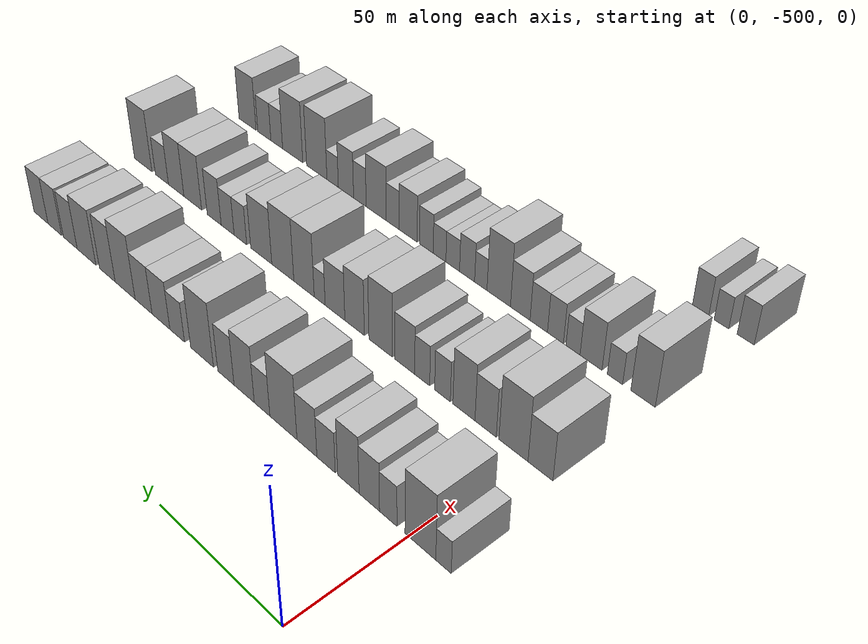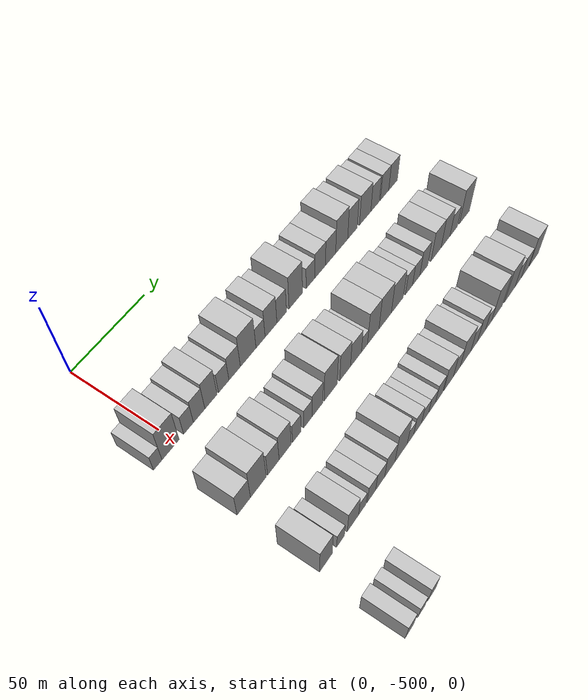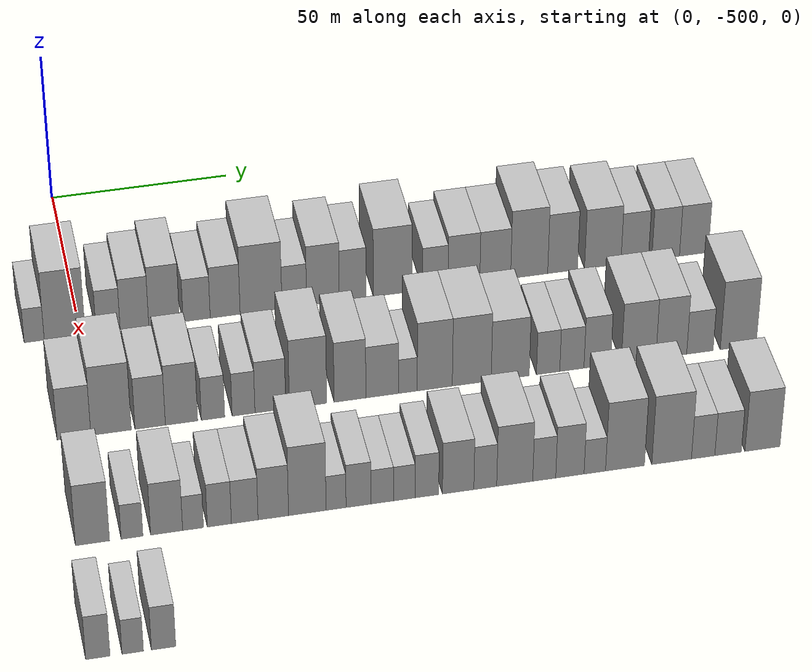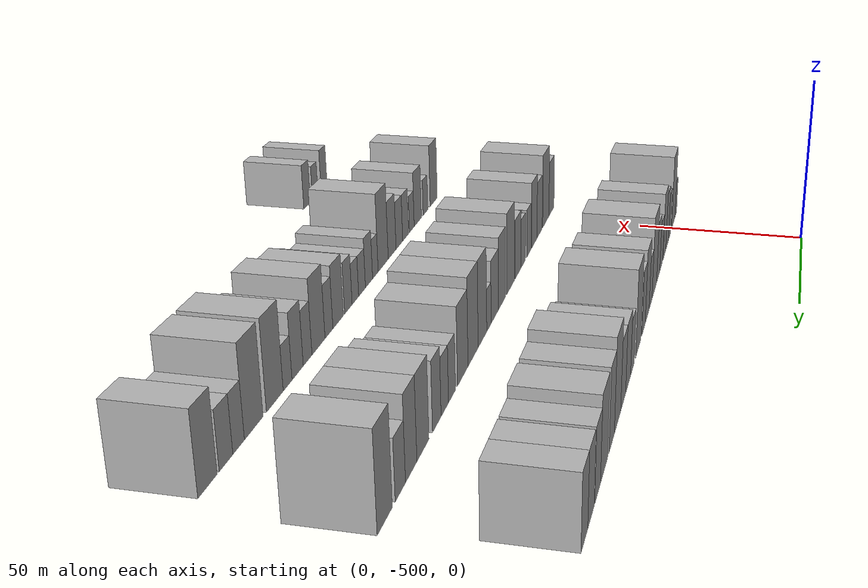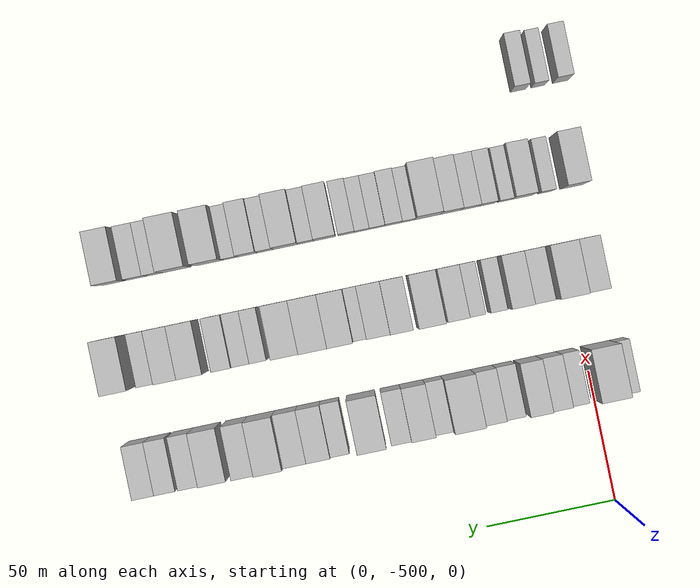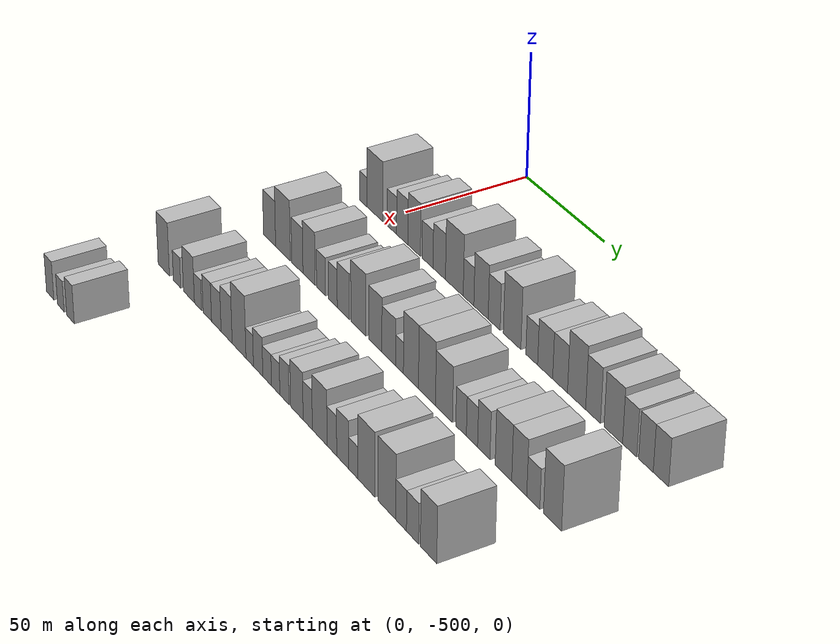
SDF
<sdf version="1.6">
 <world name="default">
  <model name="building_11">
   <static>1</static>
   <pose>50.0000 -512.6842 0 0.000000 0.000000 0.000000</pose>
   <link name="link">
    <pose>0 0 6.00 0 0 0</pose>
    <collision name="collision"><geometry><box><size>20.0000 5.4778 12.0000</size></box></geometry></collision>
    <visual name="visual">
     <cast_shadows>0</cast_shadows>
     <geometry><box><size>20.0000 5.4778 12.0000</size></box></geometry>
     <material>
      <script>
       <uri>model://HANNAS_wall/materials/scripts</uri>
       <uri>model://HANNAS_wall/materials/textures</uri>
       <name>vrc/HANNAS_wall</name>
      </script>
     </material>
    </visual>
   </link>
  </model>
  <model name="building_12">
   <static>1</static>
   <pose>50.0000 -504.3334 0 0.000000 0.000000 0.000000</pose>
   <link name="link">
    <pose>0 0 12.00 0 0 0</pose>
    <collision name="collision"><geometry><box><size>20.0000 11.2239 24.0000</size></box></geometry></collision>
    <visual name="visual">
     <cast_shadows>0</cast_shadows>
     <geometry><box><size>20.0000 11.2239 24.0000</size></box></geometry>
     <material>
      <script>
       <uri>model://HANNAS_wall/materials/scripts</uri>
       <uri>model://HANNAS_wall/materials/textures</uri>
       <name>vrc/HANNAS_wall</name>
      </script>
     </material>
    </visual>
   </link>
  </model>
  <model name="building_13">
   <static>1</static>
   <pose>50.0000 -492.4218 0 0.000000 0.000000 0.000000</pose>
   <link name="link">
    <pose>0 0 7.50 0 0 0</pose>
    <collision name="collision"><geometry><box><size>20.0000 6.5992 15.0000</size></box></geometry></collision>
    <visual name="visual">
     <cast_shadows>0</cast_shadows>
     <geometry><box><size>20.0000 6.5992 15.0000</size></box></geometry>
     <material>
      <script>
       <uri>model://HANNAS_wall/materials/scripts</uri>
       <uri>model://HANNAS_wall/materials/textures</uri>
       <name>vrc/HANNAS_wall</name>
      </script>
     </material>
    </visual>
   </link>
  </model>
  <model name="building_14">
   <static>1</static>
   <pose>50.0000 -485.1858 0 0.000000 0.000000 0.000000</pose>
   <link name="link">
    <pose>0 0 9.00 0 0 0</pose>
    <collision name="collision"><geometry><box><size>20.0000 7.8728 18.0000</size></box></geometry></collision>
    <visual name="visual">
     <cast_shadows>0</cast_shadows>
     <geometry><box><size>20.0000 7.8728 18.0000</size></box></geometry>
     <material>
      <script>
       <uri>model://HANNAS_wall/materials/scripts</uri>
       <uri>model://HANNAS_wall/materials/textures</uri>
       <name>vrc/HANNAS_wall</name>
      </script>
     </material>
    </visual>
   </link>
  </model>
  <model name="building_15">
   <static>1</static>
   <pose>50.0000 -477.0049 0 0.000000 0.000000 0.000000</pose>
   <link name="link">
    <pose>0 0 10.50 0 0 0</pose>
    <collision name="collision"><geometry><box><size>20.0000 8.4891 21.0000</size></box></geometry></collision>
    <visual name="visual">
     <cast_shadows>0</cast_shadows>
     <geometry><box><size>20.0000 8.4891 21.0000</size></box></geometry>
     <material>
      <script>
       <uri>model://HANNAS_wall/materials/scripts</uri>
       <uri>model://HANNAS_wall/materials/textures</uri>
       <name>vrc/HANNAS_wall</name>
      </script>
     </material>
    </visual>
   </link>
  </model>
  <model name="building_16">
   <static>1</static>
   <pose>50.0000 -468.0218 0 0.000000 0.000000 0.000000</pose>
   <link name="link">
    <pose>0 0 7.50 0 0 0</pose>
    <collision name="collision"><geometry><box><size>20.0000 7.4771 15.0000</size></box></geometry></collision>
    <visual name="visual">
     <cast_shadows>0</cast_shadows>
     <geometry><box><size>20.0000 7.4771 15.0000</size></box></geometry>
     <material>
      <script>
       <uri>model://HANNAS_wall/materials/scripts</uri>
       <uri>model://HANNAS_wall/materials/textures</uri>
       <name>vrc/HANNAS_wall</name>
      </script>
     </material>
    </visual>
   </link>
  </model>
  <model name="building_17">
   <static>1</static>
   <pose>50.0000 -460.1328 0 0.000000 0.000000 0.000000</pose>
   <link name="link">
    <pose>0 0 9.00 0 0 0</pose>
    <collision name="collision"><geometry><box><size>20.0000 8.3009 18.0000</size></box></geometry></collision>
    <visual name="visual">
     <cast_shadows>0</cast_shadows>
     <geometry><box><size>20.0000 8.3009 18.0000</size></box></geometry>
     <material>
      <script>
       <uri>model://HANNAS_wall/materials/scripts</uri>
       <uri>model://HANNAS_wall/materials/textures</uri>
       <name>vrc/HANNAS_wall</name>
      </script>
     </material>
    </visual>
   </link>
  </model>
  <model name="building_18">
   <static>1</static>
   <pose>50.0000 -450.1696 0 0.000000 0.000000 0.000000</pose>
   <link name="link">
    <pose>0 0 12.00 0 0 0</pose>
    <collision name="collision"><geometry><box><size>20.0000 11.6257 24.0000</size></box></geometry></collision>
    <visual name="visual">
     <cast_shadows>0</cast_shadows>
     <geometry><box><size>20.0000 11.6257 24.0000</size></box></geometry>
     <material>
      <script>
       <uri>model://HANNAS_wall/materials/scripts</uri>
       <uri>model://HANNAS_wall/materials/textures</uri>
       <name>vrc/HANNAS_wall</name>
      </script>
     </material>
    </visual>
   </link>
  </model>
  <model name="building_19">
   <static>1</static>
   <pose>50.0000 -440.9127 0 0.000000 0.000000 0.000000</pose>
   <link name="link">
    <pose>0 0 7.50 0 0 0</pose>
    <collision name="collision"><geometry><box><size>20.0000 6.8882 15.0000</size></box></geometry></collision>
    <visual name="visual">
     <cast_shadows>0</cast_shadows>
     <geometry><box><size>20.0000 6.8882 15.0000</size></box></geometry>
     <material>
      <script>
       <uri>model://HANNAS_wall/materials/scripts</uri>
       <uri>model://HANNAS_wall/materials/textures</uri>
       <name>vrc/HANNAS_wall</name>
      </script>
     </material>
    </visual>
   </link>
  </model>
  <model name="building_20">
   <static>1</static>
   <pose>50.0000 -432.9090 0 0.000000 0.000000 0.000000</pose>
   <link name="link">
    <pose>0 0 10.50 0 0 0</pose>
    <collision name="collision"><geometry><box><size>20.0000 9.1191 21.0000</size></box></geometry></collision>
    <visual name="visual">
     <cast_shadows>0</cast_shadows>
     <geometry><box><size>20.0000 9.1191 21.0000</size></box></geometry>
     <material>
      <script>
       <uri>model://HANNAS_wall/materials/scripts</uri>
       <uri>model://HANNAS_wall/materials/textures</uri>
       <name>vrc/HANNAS_wall</name>
      </script>
     </material>
    </visual>
   </link>
  </model>
  <model name="building_21">
   <static>1</static>
   <pose>50.0000 -424.5883 0 0.000000 0.000000 0.000000</pose>
   <link name="link">
    <pose>0 0 9.00 0 0 0</pose>
    <collision name="collision"><geometry><box><size>20.0000 7.5224 18.0000</size></box></geometry></collision>
    <visual name="visual">
     <cast_shadows>0</cast_shadows>
     <geometry><box><size>20.0000 7.5224 18.0000</size></box></geometry>
     <material>
      <script>
       <uri>model://HANNAS_wall/materials/scripts</uri>
       <uri>model://HANNAS_wall/materials/textures</uri>
       <name>vrc/HANNAS_wall</name>
      </script>
     </material>
    </visual>
   </link>
  </model>
  <model name="building_22">
   <static>1</static>
   <pose>50.0000 -413.3890 0 0.000000 0.000000 0.000000</pose>
   <link name="link">
    <pose>0 0 12.00 0 0 0</pose>
    <collision name="collision"><geometry><box><size>20.0000 10.8761 24.0000</size></box></geometry></collision>
    <visual name="visual">
     <cast_shadows>0</cast_shadows>
     <geometry><box><size>20.0000 10.8761 24.0000</size></box></geometry>
     <material>
      <script>
       <uri>model://HANNAS_wall/materials/scripts</uri>
       <uri>model://HANNAS_wall/materials/textures</uri>
       <name>vrc/HANNAS_wall</name>
      </script>
     </material>
    </visual>
   </link>
  </model>
  <model name="building_23">
   <static>1</static>
   <pose>50.0000 -401.3649 0 0.000000 0.000000 0.000000</pose>
   <link name="link">
    <pose>0 0 7.50 0 0 0</pose>
    <collision name="collision"><geometry><box><size>20.0000 7.1721 15.0000</size></box></geometry></collision>
    <visual name="visual">
     <cast_shadows>0</cast_shadows>
     <geometry><box><size>20.0000 7.1721 15.0000</size></box></geometry>
     <material>
      <script>
       <uri>model://HANNAS_wall/materials/scripts</uri>
       <uri>model://HANNAS_wall/materials/textures</uri>
       <name>vrc/HANNAS_wall</name>
      </script>
     </material>
    </visual>
   </link>
  </model>
  <model name="building_24">
   <static>1</static>
   <pose>50.0000 -393.2882 0 0.000000 0.000000 0.000000</pose>
   <link name="link">
    <pose>0 0 9.00 0 0 0</pose>
    <collision name="collision"><geometry><box><size>20.0000 8.9813 18.0000</size></box></geometry></collision>
    <visual name="visual">
     <cast_shadows>0</cast_shadows>
     <geometry><box><size>20.0000 8.9813 18.0000</size></box></geometry>
     <material>
      <script>
       <uri>model://HANNAS_wall/materials/scripts</uri>
       <uri>model://HANNAS_wall/materials/textures</uri>
       <name>vrc/HANNAS_wall</name>
      </script>
     </material>
    </visual>
   </link>
  </model>
  <model name="building_25">
   <static>1</static>
   <pose>50.0000 -384.4250 0 0.000000 0.000000 0.000000</pose>
   <link name="link">
    <pose>0 0 9.00 0 0 0</pose>
    <collision name="collision"><geometry><box><size>20.0000 8.7452 18.0000</size></box></geometry></collision>
    <visual name="visual">
     <cast_shadows>0</cast_shadows>
     <geometry><box><size>20.0000 8.7452 18.0000</size></box></geometry>
     <material>
      <script>
       <uri>model://HANNAS_wall/materials/scripts</uri>
       <uri>model://HANNAS_wall/materials/textures</uri>
       <name>vrc/HANNAS_wall</name>
      </script>
     </material>
    </visual>
   </link>
  </model>
  <model name="building_26">
   <static>1</static>
   <pose>50.0000 -374.7826 0 0.000000 0.000000 0.000000</pose>
   <link name="link">
    <pose>0 0 12.00 0 0 0</pose>
    <collision name="collision"><geometry><box><size>20.0000 10.5395 24.0000</size></box></geometry></collision>
    <visual name="visual">
     <cast_shadows>0</cast_shadows>
     <geometry><box><size>20.0000 10.5395 24.0000</size></box></geometry>
     <material>
      <script>
       <uri>model://HANNAS_wall/materials/scripts</uri>
       <uri>model://HANNAS_wall/materials/textures</uri>
       <name>vrc/HANNAS_wall</name>
      </script>
     </material>
    </visual>
   </link>
  </model>
  <model name="building_27">
   <static>1</static>
   <pose>50.0000 -365.2559 0 0.000000 0.000000 0.000000</pose>
   <link name="link">
    <pose>0 0 10.50 0 0 0</pose>
    <collision name="collision"><geometry><box><size>20.0000 8.5140 21.0000</size></box></geometry></collision>
    <visual name="visual">
     <cast_shadows>0</cast_shadows>
     <geometry><box><size>20.0000 8.5140 21.0000</size></box></geometry>
     <material>
      <script>
       <uri>model://HANNAS_wall/materials/scripts</uri>
       <uri>model://HANNAS_wall/materials/textures</uri>
       <name>vrc/HANNAS_wall</name>
      </script>
     </material>
    </visual>
   </link>
  </model>
  <model name="building_28">
   <static>1</static>
   <pose>50.0000 -353.7979 0 0.000000 0.000000 0.000000</pose>
   <link name="link">
    <pose>0 0 10.50 0 0 0</pose>
    <collision name="collision"><geometry><box><size>20.0000 10.4020 21.0000</size></box></geometry></collision>
    <visual name="visual">
     <cast_shadows>0</cast_shadows>
     <geometry><box><size>20.0000 10.4020 21.0000</size></box></geometry>
     <material>
      <script>
       <uri>model://HANNAS_wall/materials/scripts</uri>
       <uri>model://HANNAS_wall/materials/textures</uri>
       <name>vrc/HANNAS_wall</name>
      </script>
     </material>
    </visual>
   </link>
  </model>
  <model name="building_29">
   <static>1</static>
   <pose>50.0000 -344.6565 0 0.000000 0.000000 0.000000</pose>
   <link name="link">
    <pose>0 0 9.00 0 0 0</pose>
    <collision name="collision"><geometry><box><size>20.0000 7.8808 18.0000</size></box></geometry></collision>
    <visual name="visual">
     <cast_shadows>0</cast_shadows>
     <geometry><box><size>20.0000 7.8808 18.0000</size></box></geometry>
     <material>
      <script>
       <uri>model://HANNAS_wall/materials/scripts</uri>
       <uri>model://HANNAS_wall/materials/textures</uri>
       <name>vrc/HANNAS_wall</name>
      </script>
     </material>
    </visual>
   </link>
  </model>
  <model name="building_30">
   <static>1</static>
   <pose>50.0000 -335.7400 0 0.000000 0.000000 0.000000</pose>
   <link name="link">
    <pose>0 0 9.00 0 0 0</pose>
    <collision name="collision"><geometry><box><size>20.0000 7.9522 18.0000</size></box></geometry></collision>
    <visual name="visual">
     <cast_shadows>0</cast_shadows>
     <geometry><box><size>20.0000 7.9522 18.0000</size></box></geometry>
     <material>
      <script>
       <uri>model://HANNAS_wall/materials/scripts</uri>
       <uri>model://HANNAS_wall/materials/textures</uri>
       <name>vrc/HANNAS_wall</name>
      </script>
     </material>
    </visual>
   </link>
  </model>
  <model name="building_31">
   <static>1</static>
   <pose>50.0000 -327.6117 0 0.000000 0.000000 0.000000</pose>
   <link name="link">
    <pose>0 0 9.00 0 0 0</pose>
    <collision name="collision"><geometry><box><size>20.0000 8.3045 18.0000</size></box></geometry></collision>
    <visual name="visual">
     <cast_shadows>0</cast_shadows>
     <geometry><box><size>20.0000 8.3045 18.0000</size></box></geometry>
     <material>
      <script>
       <uri>model://HANNAS_wall/materials/scripts</uri>
       <uri>model://HANNAS_wall/materials/textures</uri>
       <name>vrc/HANNAS_wall</name>
      </script>
     </material>
    </visual>
   </link>
  </model>
  <model name="building_150">
   <static>1</static>
   <pose>90.0000 -507.1662 0 0.000000 0.000000 0.000000</pose>
   <link name="link">
    <pose>0 0 9.00 0 0 0</pose>
    <collision name="collision"><geometry><box><size>20.0000 8.9471 18.0000</size></box></geometry></collision>
    <visual name="visual">
     <cast_shadows>0</cast_shadows>
     <geometry><box><size>20.0000 8.9471 18.0000</size></box></geometry>
     <material>
      <script>
       <uri>model://HANNAS_wall/materials/scripts</uri>
       <uri>model://HANNAS_wall/materials/textures</uri>
       <name>vrc/HANNAS_wall</name>
      </script>
     </material>
    </visual>
   </link>
  </model>
  <model name="building_151">
   <static>1</static>
   <pose>90.0000 -497.3158 0 0.000000 0.000000 0.000000</pose>
   <link name="link">
    <pose>0 0 12.00 0 0 0</pose>
    <collision name="collision"><geometry><box><size>20.0000 10.7537 24.0000</size></box></geometry></collision>
    <visual name="visual">
     <cast_shadows>0</cast_shadows>
     <geometry><box><size>20.0000 10.7537 24.0000</size></box></geometry>
     <material>
      <script>
       <uri>model://HANNAS_wall/materials/scripts</uri>
       <uri>model://HANNAS_wall/materials/textures</uri>
       <name>vrc/HANNAS_wall</name>
      </script>
     </material>
    </visual>
   </link>
  </model>
  <model name="building_152">
   <static>1</static>
   <pose>90.0000 -486.8825 0 0.000000 0.000000 0.000000</pose>
   <link name="link">
    <pose>0 0 9.00 0 0 0</pose>
    <collision name="collision"><geometry><box><size>20.0000 8.1130 18.0000</size></box></geometry></collision>
    <visual name="visual">
     <cast_shadows>0</cast_shadows>
     <geometry><box><size>20.0000 8.1130 18.0000</size></box></geometry>
     <material>
      <script>
       <uri>model://HANNAS_wall/materials/scripts</uri>
       <uri>model://HANNAS_wall/materials/textures</uri>
       <name>vrc/HANNAS_wall</name>
      </script>
     </material>
    </visual>
   </link>
  </model>
  <model name="building_153">
   <static>1</static>
   <pose>90.0000 -478.5081 0 0.000000 0.000000 0.000000</pose>
   <link name="link">
    <pose>0 0 10.50 0 0 0</pose>
    <collision name="collision"><geometry><box><size>20.0000 8.6357 21.0000</size></box></geometry></collision>
    <visual name="visual">
     <cast_shadows>0</cast_shadows>
     <geometry><box><size>20.0000 8.6357 21.0000</size></box></geometry>
     <material>
      <script>
       <uri>model://HANNAS_wall/materials/scripts</uri>
       <uri>model://HANNAS_wall/materials/textures</uri>
       <name>vrc/HANNAS_wall</name>
      </script>
     </material>
    </visual>
   </link>
  </model>
  <model name="building_154">
   <static>1</static>
   <pose>90.0000 -470.0539 0 0.000000 0.000000 0.000000</pose>
   <link name="link">
    <pose>0 0 7.50 0 0 0</pose>
    <collision name="collision"><geometry><box><size>20.0000 6.2727 15.0000</size></box></geometry></collision>
    <visual name="visual">
     <cast_shadows>0</cast_shadows>
     <geometry><box><size>20.0000 6.2727 15.0000</size></box></geometry>
     <material>
      <script>
       <uri>model://HANNAS_wall/materials/scripts</uri>
       <uri>model://HANNAS_wall/materials/textures</uri>
       <name>vrc/HANNAS_wall</name>
      </script>
     </material>
    </visual>
   </link>
  </model>
  <model name="building_155">
   <static>1</static>
   <pose>90.0000 -461.8418 0 0.000000 0.000000 0.000000</pose>
   <link name="link">
    <pose>0 0 7.50 0 0 0</pose>
    <collision name="collision"><geometry><box><size>20.0000 6.1516 15.0000</size></box></geometry></collision>
    <visual name="visual">
     <cast_shadows>0</cast_shadows>
     <geometry><box><size>20.0000 6.1516 15.0000</size></box></geometry>
     <material>
      <script>
       <uri>model://HANNAS_wall/materials/scripts</uri>
       <uri>model://HANNAS_wall/materials/textures</uri>
       <name>vrc/HANNAS_wall</name>
      </script>
     </material>
    </visual>
   </link>
  </model>
  <model name="building_156">
   <static>1</static>
   <pose>90.0000 -454.6146 0 0.000000 0.000000 0.000000</pose>
   <link name="link">
    <pose>0 0 9.00 0 0 0</pose>
    <collision name="collision"><geometry><box><size>20.0000 8.3029 18.0000</size></box></geometry></collision>
    <visual name="visual">
     <cast_shadows>0</cast_shadows>
     <geometry><box><size>20.0000 8.3029 18.0000</size></box></geometry>
     <material>
      <script>
       <uri>model://HANNAS_wall/materials/scripts</uri>
       <uri>model://HANNAS_wall/materials/textures</uri>
       <name>vrc/HANNAS_wall</name>
      </script>
     </material>
    </visual>
   </link>
  </model>
  <model name="building_157">
   <static>1</static>
   <pose>90.0000 -444.4185 0 0.000000 0.000000 0.000000</pose>
   <link name="link">
    <pose>0 0 12.00 0 0 0</pose>
    <collision name="collision"><geometry><box><size>20.0000 10.0892 24.0000</size></box></geometry></collision>
    <visual name="visual">
     <cast_shadows>0</cast_shadows>
     <geometry><box><size>20.0000 10.0892 24.0000</size></box></geometry>
     <material>
      <script>
       <uri>model://HANNAS_wall/materials/scripts</uri>
       <uri>model://HANNAS_wall/materials/textures</uri>
       <name>vrc/HANNAS_wall</name>
      </script>
     </material>
    </visual>
   </link>
  </model>
  <model name="building_158">
   <static>1</static>
   <pose>90.0000 -433.0668 0 0.000000 0.000000 0.000000</pose>
   <link name="link">
    <pose>0 0 10.50 0 0 0</pose>
    <collision name="collision"><geometry><box><size>20.0000 8.6144 21.0000</size></box></geometry></collision>
    <visual name="visual">
     <cast_shadows>0</cast_shadows>
     <geometry><box><size>20.0000 8.6144 21.0000</size></box></geometry>
     <material>
      <script>
       <uri>model://HANNAS_wall/materials/scripts</uri>
       <uri>model://HANNAS_wall/materials/textures</uri>
       <name>vrc/HANNAS_wall</name>
      </script>
     </material>
    </visual>
   </link>
  </model>
  <model name="building_159">
   <static>1</static>
   <pose>90.0000 -424.3049 0 0.000000 0.000000 0.000000</pose>
   <link name="link">
    <pose>0 0 9.00 0 0 0</pose>
    <collision name="collision"><geometry><box><size>20.0000 8.9094 18.0000</size></box></geometry></collision>
    <visual name="visual">
     <cast_shadows>0</cast_shadows>
     <geometry><box><size>20.0000 8.9094 18.0000</size></box></geometry>
     <material>
      <script>
       <uri>model://HANNAS_wall/materials/scripts</uri>
       <uri>model://HANNAS_wall/materials/textures</uri>
       <name>vrc/HANNAS_wall</name>
      </script>
     </material>
    </visual>
   </link>
  </model>
  <model name="building_160">
   <static>1</static>
   <pose>90.0000 -417.3159 0 0.000000 0.000000 0.000000</pose>
   <link name="link">
    <pose>0 0 6.00 0 0 0</pose>
    <collision name="collision"><geometry><box><size>20.0000 5.0687 12.0000</size></box></geometry></collision>
    <visual name="visual">
     <cast_shadows>0</cast_shadows>
     <geometry><box><size>20.0000 5.0687 12.0000</size></box></geometry>
     <material>
      <script>
       <uri>model://HANNAS_wall/materials/scripts</uri>
       <uri>model://HANNAS_wall/materials/textures</uri>
       <name>vrc/HANNAS_wall</name>
      </script>
     </material>
    </visual>
   </link>
  </model>
  <model name="building_161">
   <static>1</static>
   <pose>90.0000 -409.9759 0 0.000000 0.000000 0.000000</pose>
   <link name="link">
    <pose>0 0 12.00 0 0 0</pose>
    <collision name="collision"><geometry><box><size>20.0000 9.6112 24.0000</size></box></geometry></collision>
    <visual name="visual">
     <cast_shadows>0</cast_shadows>
     <geometry><box><size>20.0000 9.6112 24.0000</size></box></geometry>
     <material>
      <script>
       <uri>model://HANNAS_wall/materials/scripts</uri>
       <uri>model://HANNAS_wall/materials/textures</uri>
       <name>vrc/HANNAS_wall</name>
      </script>
     </material>
    </visual>
   </link>
  </model>
  <model name="building_162">
   <static>1</static>
   <pose>90.0000 -399.8412 0 0.000000 0.000000 0.000000</pose>
   <link name="link">
    <pose>0 0 12.00 0 0 0</pose>
    <collision name="collision"><geometry><box><size>20.0000 10.6582 24.0000</size></box></geometry></collision>
    <visual name="visual">
     <cast_shadows>0</cast_shadows>
     <geometry><box><size>20.0000 10.6582 24.0000</size></box></geometry>
     <material>
      <script>
       <uri>model://HANNAS_wall/materials/scripts</uri>
       <uri>model://HANNAS_wall/materials/textures</uri>
       <name>vrc/HANNAS_wall</name>
      </script>
     </material>
    </visual>
   </link>
  </model>
  <model name="building_163">
   <static>1</static>
   <pose>90.0000 -389.2739 0 0.000000 0.000000 0.000000</pose>
   <link name="link">
    <pose>0 0 10.50 0 0 0</pose>
    <collision name="collision"><geometry><box><size>20.0000 10.4764 21.0000</size></box></geometry></collision>
    <visual name="visual">
     <cast_shadows>0</cast_shadows>
     <geometry><box><size>20.0000 10.4764 21.0000</size></box></geometry>
     <material>
      <script>
       <uri>model://HANNAS_wall/materials/scripts</uri>
       <uri>model://HANNAS_wall/materials/textures</uri>
       <name>vrc/HANNAS_wall</name>
      </script>
     </material>
    </visual>
   </link>
  </model>
  <model name="building_164">
   <static>1</static>
   <pose>90.0000 -378.8194 0 0.000000 0.000000 0.000000</pose>
   <link name="link">
    <pose>0 0 7.50 0 0 0</pose>
    <collision name="collision"><geometry><box><size>20.0000 6.4325 15.0000</size></box></geometry></collision>
    <visual name="visual">
     <cast_shadows>0</cast_shadows>
     <geometry><box><size>20.0000 6.4325 15.0000</size></box></geometry>
     <material>
      <script>
       <uri>model://HANNAS_wall/materials/scripts</uri>
       <uri>model://HANNAS_wall/materials/textures</uri>
       <name>vrc/HANNAS_wall</name>
      </script>
     </material>
    </visual>
   </link>
  </model>
  <model name="building_165">
   <static>1</static>
   <pose>90.0000 -372.2567 0 0.000000 0.000000 0.000000</pose>
   <link name="link">
    <pose>0 0 7.50 0 0 0</pose>
    <collision name="collision"><geometry><box><size>20.0000 6.6930 15.0000</size></box></geometry></collision>
    <visual name="visual">
     <cast_shadows>0</cast_shadows>
     <geometry><box><size>20.0000 6.6930 15.0000</size></box></geometry>
     <material>
      <script>
       <uri>model://HANNAS_wall/materials/scripts</uri>
       <uri>model://HANNAS_wall/materials/textures</uri>
       <name>vrc/HANNAS_wall</name>
      </script>
     </material>
    </visual>
   </link>
  </model>
  <model name="building_166">
   <static>1</static>
   <pose>90.0000 -365.2239 0 0.000000 0.000000 0.000000</pose>
   <link name="link">
    <pose>0 0 9.00 0 0 0</pose>
    <collision name="collision"><geometry><box><size>20.0000 7.3725 18.0000</size></box></geometry></collision>
    <visual name="visual">
     <cast_shadows>0</cast_shadows>
     <geometry><box><size>20.0000 7.3725 18.0000</size></box></geometry>
     <material>
      <script>
       <uri>model://HANNAS_wall/materials/scripts</uri>
       <uri>model://HANNAS_wall/materials/textures</uri>
       <name>vrc/HANNAS_wall</name>
      </script>
     </material>
    </visual>
   </link>
  </model>
  <model name="building_167">
   <static>1</static>
   <pose>90.0000 -353.7326 0 0.000000 0.000000 0.000000</pose>
   <link name="link">
    <pose>0 0 10.50 0 0 0</pose>
    <collision name="collision"><geometry><box><size>20.0000 9.6101 21.0000</size></box></geometry></collision>
    <visual name="visual">
     <cast_shadows>0</cast_shadows>
     <geometry><box><size>20.0000 9.6101 21.0000</size></box></geometry>
     <material>
      <script>
       <uri>model://HANNAS_wall/materials/scripts</uri>
       <uri>model://HANNAS_wall/materials/textures</uri>
       <name>vrc/HANNAS_wall</name>
      </script>
     </material>
    </visual>
   </link>
  </model>
  <model name="building_168">
   <static>1</static>
   <pose>90.0000 -344.6272 0 0.000000 0.000000 0.000000</pose>
   <link name="link">
    <pose>0 0 10.50 0 0 0</pose>
    <collision name="collision"><geometry><box><size>20.0000 8.6007 21.0000</size></box></geometry></collision>
    <visual name="visual">
     <cast_shadows>0</cast_shadows>
     <geometry><box><size>20.0000 8.6007 21.0000</size></box></geometry>
     <material>
      <script>
       <uri>model://HANNAS_wall/materials/scripts</uri>
       <uri>model://HANNAS_wall/materials/textures</uri>
       <name>vrc/HANNAS_wall</name>
      </script>
     </material>
    </visual>
   </link>
  </model>
  <model name="building_169">
   <static>1</static>
   <pose>90.0000 -336.6328 0 0.000000 0.000000 0.000000</pose>
   <link name="link">
    <pose>0 0 7.50 0 0 0</pose>
    <collision name="collision"><geometry><box><size>20.0000 7.3882 15.0000</size></box></geometry></collision>
    <visual name="visual">
     <cast_shadows>0</cast_shadows>
     <geometry><box><size>20.0000 7.3882 15.0000</size></box></geometry>
     <material>
      <script>
       <uri>model://HANNAS_wall/materials/scripts</uri>
       <uri>model://HANNAS_wall/materials/textures</uri>
       <name>vrc/HANNAS_wall</name>
      </script>
     </material>
    </visual>
   </link>
  </model>
  <model name="building_170">
   <static>1</static>
   <pose>90.0000 -325.9047 0 0.000000 0.000000 0.000000</pose>
   <link name="link">
    <pose>0 0 12.00 0 0 0</pose>
    <collision name="collision"><geometry><box><size>20.0000 10.0680 24.0000</size></box></geometry></collision>
    <visual name="visual">
     <cast_shadows>0</cast_shadows>
     <geometry><box><size>20.0000 10.0680 24.0000</size></box></geometry>
     <material>
      <script>
       <uri>model://HANNAS_wall/materials/scripts</uri>
       <uri>model://HANNAS_wall/materials/textures</uri>
       <name>vrc/HANNAS_wall</name>
      </script>
     </material>
    </visual>
   </link>
  </model>
  <model name="building_283">
   <static>1</static>
   <pose>130.0000 -507.8015 0 0.000000 0.000000 0.000000</pose>
   <link name="link">
    <pose>0 0 10.50 0 0 0</pose>
    <collision name="collision"><geometry><box><size>20.0000 8.7747 21.0000</size></box></geometry></collision>
    <visual name="visual">
     <cast_shadows>0</cast_shadows>
     <geometry><box><size>20.0000 8.7747 21.0000</size></box></geometry>
     <material>
      <script>
       <uri>model://HANNAS_wall/materials/scripts</uri>
       <uri>model://HANNAS_wall/materials/textures</uri>
       <name>vrc/HANNAS_wall</name>
      </script>
     </material>
    </visual>
   </link>
  </model>
  <model name="building_284">
   <static>1</static>
   <pose>130.0000 -497.6023 0 0.000000 0.000000 0.000000</pose>
   <link name="link">
    <pose>0 0 6.00 0 0 0</pose>
    <collision name="collision"><geometry><box><size>20.0000 5.6237 12.0000</size></box></geometry></collision>
    <visual name="visual">
     <cast_shadows>0</cast_shadows>
     <geometry><box><size>20.0000 5.6237 12.0000</size></box></geometry>
     <material>
      <script>
       <uri>model://HANNAS_wall/materials/scripts</uri>
       <uri>model://HANNAS_wall/materials/textures</uri>
       <name>vrc/HANNAS_wall</name>
      </script>
     </material>
    </visual>
   </link>
  </model>
  <model name="building_285">
   <static>1</static>
   <pose>130.0000 -488.6462 0 0.000000 0.000000 0.000000</pose>
   <link name="link">
    <pose>0 0 9.00 0 0 0</pose>
    <collision name="collision"><geometry><box><size>20.0000 8.2884 18.0000</size></box></geometry></collision>
    <visual name="visual">
     <cast_shadows>0</cast_shadows>
     <geometry><box><size>20.0000 8.2884 18.0000</size></box></geometry>
     <material>
      <script>
       <uri>model://HANNAS_wall/materials/scripts</uri>
       <uri>model://HANNAS_wall/materials/textures</uri>
       <name>vrc/HANNAS_wall</name>
      </script>
     </material>
    </visual>
   </link>
  </model>
  <model name="building_286">
   <static>1</static>
   <pose>130.0000 -481.7968 0 0.000000 0.000000 0.000000</pose>
   <link name="link">
    <pose>0 0 6.00 0 0 0</pose>
    <collision name="collision"><geometry><box><size>20.0000 5.4103 12.0000</size></box></geometry></collision>
    <visual name="visual">
     <cast_shadows>0</cast_shadows>
     <geometry><box><size>20.0000 5.4103 12.0000</size></box></geometry>
     <material>
      <script>
       <uri>model://HANNAS_wall/materials/scripts</uri>
       <uri>model://HANNAS_wall/materials/textures</uri>
       <name>vrc/HANNAS_wall</name>
      </script>
     </material>
    </visual>
   </link>
  </model>
  <model name="building_287">
   <static>1</static>
   <pose>130.0000 -474.9607 0 0.000000 0.000000 0.000000</pose>
   <link name="link">
    <pose>0 0 7.50 0 0 0</pose>
    <collision name="collision"><geometry><box><size>20.0000 6.2620 15.0000</size></box></geometry></collision>
    <visual name="visual">
     <cast_shadows>0</cast_shadows>
     <geometry><box><size>20.0000 6.2620 15.0000</size></box></geometry>
     <material>
      <script>
       <uri>model://HANNAS_wall/materials/scripts</uri>
       <uri>model://HANNAS_wall/materials/textures</uri>
       <name>vrc/HANNAS_wall</name>
      </script>
     </material>
    </visual>
   </link>
  </model>
  <model name="building_288">
   <static>1</static>
   <pose>130.0000 -468.3507 0 0.000000 0.000000 0.000000</pose>
   <link name="link">
    <pose>0 0 7.50 0 0 0</pose>
    <collision name="collision"><geometry><box><size>20.0000 6.9579 15.0000</size></box></geometry></collision>
    <visual name="visual">
     <cast_shadows>0</cast_shadows>
     <geometry><box><size>20.0000 6.9579 15.0000</size></box></geometry>
     <material>
      <script>
       <uri>model://HANNAS_wall/materials/scripts</uri>
       <uri>model://HANNAS_wall/materials/textures</uri>
       <name>vrc/HANNAS_wall</name>
      </script>
     </material>
    </visual>
   </link>
  </model>
  <model name="building_289">
   <static>1</static>
   <pose>130.0000 -460.8813 0 0.000000 0.000000 0.000000</pose>
   <link name="link">
    <pose>0 0 9.00 0 0 0</pose>
    <collision name="collision"><geometry><box><size>20.0000 7.9809 18.0000</size></box></geometry></collision>
    <visual name="visual">
     <cast_shadows>0</cast_shadows>
     <geometry><box><size>20.0000 7.9809 18.0000</size></box></geometry>
     <material>
      <script>
       <uri>model://HANNAS_wall/materials/scripts</uri>
       <uri>model://HANNAS_wall/materials/textures</uri>
       <name>vrc/HANNAS_wall</name>
      </script>
     </material>
    </visual>
   </link>
  </model>
  <model name="building_290">
   <static>1</static>
   <pose>130.0000 -451.9796 0 0.000000 0.000000 0.000000</pose>
   <link name="link">
    <pose>0 0 12.00 0 0 0</pose>
    <collision name="collision"><geometry><box><size>20.0000 9.8225 24.0000</size></box></geometry></collision>
    <visual name="visual">
     <cast_shadows>0</cast_shadows>
     <geometry><box><size>20.0000 9.8225 24.0000</size></box></geometry>
     <material>
      <script>
       <uri>model://HANNAS_wall/materials/scripts</uri>
       <uri>model://HANNAS_wall/materials/textures</uri>
       <name>vrc/HANNAS_wall</name>
      </script>
     </material>
    </visual>
   </link>
  </model>
  <model name="building_291">
   <static>1</static>
   <pose>130.0000 -444.4454 0 0.000000 0.000000 0.000000</pose>
   <link name="link">
    <pose>0 0 6.00 0 0 0</pose>
    <collision name="collision"><geometry><box><size>20.0000 5.2460 12.0000</size></box></geometry></collision>
    <visual name="visual">
     <cast_shadows>0</cast_shadows>
     <geometry><box><size>20.0000 5.2460 12.0000</size></box></geometry>
     <material>
      <script>
       <uri>model://HANNAS_wall/materials/scripts</uri>
       <uri>model://HANNAS_wall/materials/textures</uri>
       <name>vrc/HANNAS_wall</name>
      </script>
     </material>
    </visual>
   </link>
  </model>
  <model name="building_292">
   <static>1</static>
   <pose>130.0000 -438.5631 0 0.000000 0.000000 0.000000</pose>
   <link name="link">
    <pose>0 0 7.50 0 0 0</pose>
    <collision name="collision"><geometry><box><size>20.0000 6.5186 15.0000</size></box></geometry></collision>
    <visual name="visual">
     <cast_shadows>0</cast_shadows>
     <geometry><box><size>20.0000 6.5186 15.0000</size></box></geometry>
     <material>
      <script>
       <uri>model://HANNAS_wall/materials/scripts</uri>
       <uri>model://HANNAS_wall/materials/textures</uri>
       <name>vrc/HANNAS_wall</name>
      </script>
     </material>
    </visual>
   </link>
  </model>
  <model name="building_293">
   <static>1</static>
   <pose>130.0000 -432.3129 0 0.000000 0.000000 0.000000</pose>
   <link name="link">
    <pose>0 0 6.00 0 0 0</pose>
    <collision name="collision"><geometry><box><size>20.0000 5.9817 12.0000</size></box></geometry></collision>
    <visual name="visual">
     <cast_shadows>0</cast_shadows>
     <geometry><box><size>20.0000 5.9817 12.0000</size></box></geometry>
     <material>
      <script>
       <uri>model://HANNAS_wall/materials/scripts</uri>
       <uri>model://HANNAS_wall/materials/textures</uri>
       <name>vrc/HANNAS_wall</name>
      </script>
     </material>
    </visual>
   </link>
  </model>
  <model name="building_294">
   <static>1</static>
   <pose>130.0000 -426.4799 0 0.000000 0.000000 0.000000</pose>
   <link name="link">
    <pose>0 0 6.00 0 0 0</pose>
    <collision name="collision"><geometry><box><size>20.0000 5.6844 12.0000</size></box></geometry></collision>
    <visual name="visual">
     <cast_shadows>0</cast_shadows>
     <geometry><box><size>20.0000 5.6844 12.0000</size></box></geometry>
     <material>
      <script>
       <uri>model://HANNAS_wall/materials/scripts</uri>
       <uri>model://HANNAS_wall/materials/textures</uri>
       <name>vrc/HANNAS_wall</name>
      </script>
     </material>
    </visual>
   </link>
  </model>
  <model name="building_295">
   <static>1</static>
   <pose>130.0000 -420.5104 0 0.000000 0.000000 0.000000</pose>
   <link name="link">
    <pose>0 0 7.50 0 0 0</pose>
    <collision name="collision"><geometry><box><size>20.0000 6.2546 15.0000</size></box></geometry></collision>
    <visual name="visual">
     <cast_shadows>0</cast_shadows>
     <geometry><box><size>20.0000 6.2546 15.0000</size></box></geometry>
     <material>
      <script>
       <uri>model://HANNAS_wall/materials/scripts</uri>
       <uri>model://HANNAS_wall/materials/textures</uri>
       <name>vrc/HANNAS_wall</name>
      </script>
     </material>
    </visual>
   </link>
  </model>
  <model name="building_296">
   <static>1</static>
   <pose>130.0000 -412.2121 0 0.000000 0.000000 0.000000</pose>
   <link name="link">
    <pose>0 0 9.00 0 0 0</pose>
    <collision name="collision"><geometry><box><size>20.0000 8.3421 18.0000</size></box></geometry></collision>
    <visual name="visual">
     <cast_shadows>0</cast_shadows>
     <geometry><box><size>20.0000 8.3421 18.0000</size></box></geometry>
     <material>
      <script>
       <uri>model://HANNAS_wall/materials/scripts</uri>
       <uri>model://HANNAS_wall/materials/textures</uri>
       <name>vrc/HANNAS_wall</name>
      </script>
     </material>
    </visual>
   </link>
  </model>
  <model name="building_297">
   <static>1</static>
   <pose>130.0000 -405.0087 0 0.000000 0.000000 0.000000</pose>
   <link name="link">
    <pose>0 0 7.50 0 0 0</pose>
    <collision name="collision"><geometry><box><size>20.0000 6.0648 15.0000</size></box></geometry></collision>
    <visual name="visual">
     <cast_shadows>0</cast_shadows>
     <geometry><box><size>20.0000 6.0648 15.0000</size></box></geometry>
     <material>
      <script>
       <uri>model://HANNAS_wall/materials/scripts</uri>
       <uri>model://HANNAS_wall/materials/textures</uri>
       <name>vrc/HANNAS_wall</name>
      </script>
     </material>
    </visual>
   </link>
  </model>
  <model name="building_298">
   <static>1</static>
   <pose>130.0000 -397.1681 0 0.000000 0.000000 0.000000</pose>
   <link name="link">
    <pose>0 0 10.50 0 0 0</pose>
    <collision name="collision"><geometry><box><size>20.0000 9.6164 21.0000</size></box></geometry></collision>
    <visual name="visual">
     <cast_shadows>0</cast_shadows>
     <geometry><box><size>20.0000 9.6164 21.0000</size></box></geometry>
     <material>
      <script>
       <uri>model://HANNAS_wall/materials/scripts</uri>
       <uri>model://HANNAS_wall/materials/textures</uri>
       <name>vrc/HANNAS_wall</name>
      </script>
     </material>
    </visual>
   </link>
  </model>
  <model name="building_299">
   <static>1</static>
   <pose>130.0000 -389.2866 0 0.000000 0.000000 0.000000</pose>
   <link name="link">
    <pose>0 0 7.50 0 0 0</pose>
    <collision name="collision"><geometry><box><size>20.0000 6.1465 15.0000</size></box></geometry></collision>
    <visual name="visual">
     <cast_shadows>0</cast_shadows>
     <geometry><box><size>20.0000 6.1465 15.0000</size></box></geometry>
     <material>
      <script>
       <uri>model://HANNAS_wall/materials/scripts</uri>
       <uri>model://HANNAS_wall/materials/textures</uri>
       <name>vrc/HANNAS_wall</name>
      </script>
     </material>
    </visual>
   </link>
  </model>
  <model name="building_300">
   <static>1</static>
   <pose>130.0000 -382.4162 0 0.000000 0.000000 0.000000</pose>
   <link name="link">
    <pose>0 0 9.00 0 0 0</pose>
    <collision name="collision"><geometry><box><size>20.0000 7.5943 18.0000</size></box></geometry></collision>
    <visual name="visual">
     <cast_shadows>0</cast_shadows>
     <geometry><box><size>20.0000 7.5943 18.0000</size></box></geometry>
     <material>
      <script>
       <uri>model://HANNAS_wall/materials/scripts</uri>
       <uri>model://HANNAS_wall/materials/textures</uri>
       <name>vrc/HANNAS_wall</name>
      </script>
     </material>
    </visual>
   </link>
  </model>
  <model name="building_301">
   <static>1</static>
   <pose>130.0000 -375.7379 0 0.000000 0.000000 0.000000</pose>
   <link name="link">
    <pose>0 0 6.00 0 0 0</pose>
    <collision name="collision"><geometry><box><size>20.0000 5.7624 12.0000</size></box></geometry></collision>
    <visual name="visual">
     <cast_shadows>0</cast_shadows>
     <geometry><box><size>20.0000 5.7624 12.0000</size></box></geometry>
     <material>
      <script>
       <uri>model://HANNAS_wall/materials/scripts</uri>
       <uri>model://HANNAS_wall/materials/textures</uri>
       <name>vrc/HANNAS_wall</name>
      </script>
     </material>
    </visual>
   </link>
  </model>
  <model name="building_302">
   <static>1</static>
   <pose>130.0000 -367.6210 0 0.000000 0.000000 0.000000</pose>
   <link name="link">
    <pose>0 0 12.00 0 0 0</pose>
    <collision name="collision"><geometry><box><size>20.0000 10.4713 24.0000</size></box></geometry></collision>
    <visual name="visual">
     <cast_shadows>0</cast_shadows>
     <geometry><box><size>20.0000 10.4713 24.0000</size></box></geometry>
     <material>
      <script>
       <uri>model://HANNAS_wall/materials/scripts</uri>
       <uri>model://HANNAS_wall/materials/textures</uri>
       <name>vrc/HANNAS_wall</name>
      </script>
     </material>
    </visual>
   </link>
  </model>
  <model name="building_303">
   <static>1</static>
   <pose>130.0000 -355.0342 0 0.000000 0.000000 0.000000</pose>
   <link name="link">
    <pose>0 0 12.00 0 0 0</pose>
    <collision name="collision"><geometry><box><size>20.0000 10.7024 24.0000</size></box></geometry></collision>
    <visual name="visual">
     <cast_shadows>0</cast_shadows>
     <geometry><box><size>20.0000 10.7024 24.0000</size></box></geometry>
     <material>
      <script>
       <uri>model://HANNAS_wall/materials/scripts</uri>
       <uri>model://HANNAS_wall/materials/textures</uri>
       <name>vrc/HANNAS_wall</name>
      </script>
     </material>
    </visual>
   </link>
  </model>
  <model name="building_304">
   <static>1</static>
   <pose>130.0000 -346.5163 0 0.000000 0.000000 0.000000</pose>
   <link name="link">
    <pose>0 0 7.50 0 0 0</pose>
    <collision name="collision"><geometry><box><size>20.0000 6.3333 15.0000</size></box></geometry></collision>
    <visual name="visual">
     <cast_shadows>0</cast_shadows>
     <geometry><box><size>20.0000 6.3333 15.0000</size></box></geometry>
     <material>
      <script>
       <uri>model://HANNAS_wall/materials/scripts</uri>
       <uri>model://HANNAS_wall/materials/textures</uri>
       <name>vrc/HANNAS_wall</name>
      </script>
     </material>
    </visual>
   </link>
  </model>
  <model name="building_305">
   <static>1</static>
   <pose>130.0000 -339.7608 0 0.000000 0.000000 0.000000</pose>
   <link name="link">
    <pose>0 0 7.50 0 0 0</pose>
    <collision name="collision"><geometry><box><size>20.0000 7.1778 15.0000</size></box></geometry></collision>
    <visual name="visual">
     <cast_shadows>0</cast_shadows>
     <geometry><box><size>20.0000 7.1778 15.0000</size></box></geometry>
     <material>
      <script>
       <uri>model://HANNAS_wall/materials/scripts</uri>
       <uri>model://HANNAS_wall/materials/textures</uri>
       <name>vrc/HANNAS_wall</name>
      </script>
     </material>
    </visual>
   </link>
  </model>
  <model name="building_306">
   <static>1</static>
   <pose>130.0000 -330.4174 0 0.000000 0.000000 0.000000</pose>
   <link name="link">
    <pose>0 0 10.50 0 0 0</pose>
    <collision name="collision"><geometry><box><size>20.0000 9.5091 21.0000</size></box></geometry></collision>
    <visual name="visual">
     <cast_shadows>0</cast_shadows>
     <geometry><box><size>20.0000 9.5091 21.0000</size></box></geometry>
     <material>
      <script>
       <uri>model://HANNAS_wall/materials/scripts</uri>
       <uri>model://HANNAS_wall/materials/textures</uri>
       <name>vrc/HANNAS_wall</name>
      </script>
     </material>
    </visual>
   </link>
  </model>
  <model name="building_423">
   <static>1</static>
   <pose>170.0000 -512.0121 0 0.000000 0.000000 0.000000</pose>
   <link name="link">
    <pose>0 0 7.50 0 0 0</pose>
    <collision name="collision"><geometry><box><size>20.0000 6.0812 15.0000</size></box></geometry></collision>
    <visual name="visual">
     <cast_shadows>0</cast_shadows>
     <geometry><box><size>20.0000 6.0812 15.0000</size></box></geometry>
     <material>
      <script>
       <uri>model://HANNAS_wall/materials/scripts</uri>
       <uri>model://HANNAS_wall/materials/textures</uri>
       <name>vrc/HANNAS_wall</name>
      </script>
     </material>
    </visual>
   </link>
  </model>
  <model name="building_424">
   <static>1</static>
   <pose>170.0000 -503.2953 0 0.000000 0.000000 0.000000</pose>
   <link name="link">
    <pose>0 0 6.00 0 0 0</pose>
    <collision name="collision"><geometry><box><size>20.0000 5.3523 12.0000</size></box></geometry></collision>
    <visual name="visual">
     <cast_shadows>0</cast_shadows>
     <geometry><box><size>20.0000 5.3523 12.0000</size></box></geometry>
     <material>
      <script>
       <uri>model://HANNAS_wall/materials/scripts</uri>
       <uri>model://HANNAS_wall/materials/textures</uri>
       <name>vrc/HANNAS_wall</name>
      </script>
     </material>
    </visual>
   </link>
  </model>
  <model name="building_425">
   <static>1</static>
   <pose>170.0000 -495.5739 0 0.000000 0.000000 0.000000</pose>
   <link name="link">
    <pose>0 0 7.50 0 0 0</pose>
    <collision name="collision"><geometry><box><size>20.0000 6.0906 15.0000</size></box></geometry></collision>
    <visual name="visual">
     <cast_shadows>0</cast_shadows>
     <geometry><box><size>20.0000 6.0906 15.0000</size></box></geometry>
     <material>
      <script>
       <uri>model://HANNAS_wall/materials/scripts</uri>
       <uri>model://HANNAS_wall/materials/textures</uri>
       <name>vrc/HANNAS_wall</name>
      </script>
     </material>
    </visual>
   </link>
  </model>
 </world>
</sdf>
